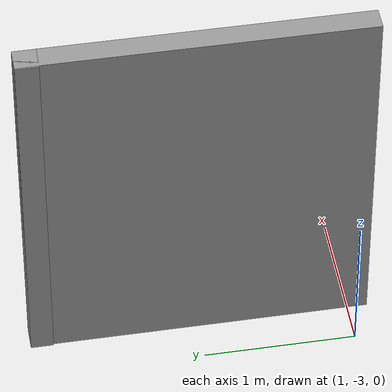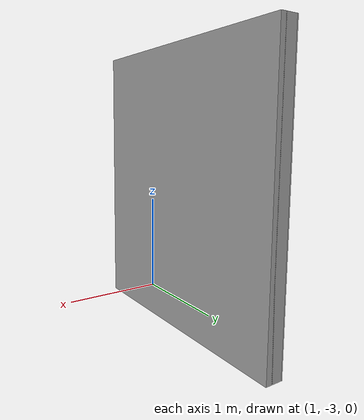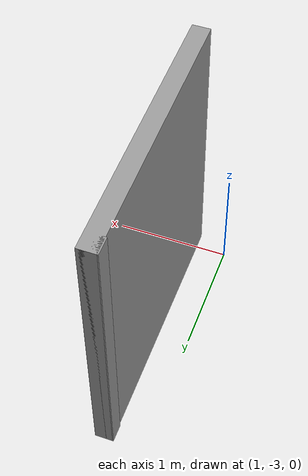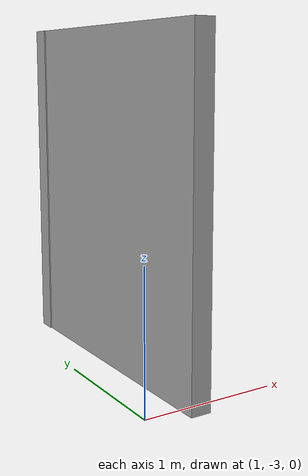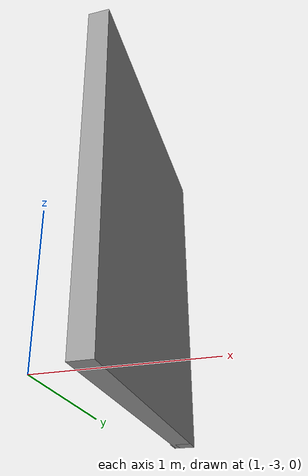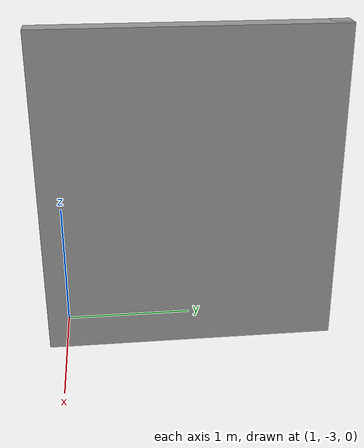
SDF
<?xml version='1.0'?>
<sdf version='1.6'>
  <model name='test'>
    <pose frame=''>1.335 -2.01 0 0 -0 0</pose>
    <link name='Wall_0'>
      <collision name='Wall_0_Collision'>
        <geometry>
          <box>
            <size>0.16 0.15 2.5</size>
          </box>
        </geometry>
        <pose frame=''>0 0 1.25 0 -0 0</pose>
      </collision>
      <visual name='Wall_0_Visual'>
        <pose frame=''>0 0 1.25 0 -0 0</pose>
        <geometry>
          <box>
            <size>0.16 0.15 2.5</size>
          </box>
        </geometry>
        <material>
          <script>
            <uri>file://media/materials/scripts/gazebo.material</uri>
            <name>Gazebo/Grey</name>
          </script>
          <ambient>1 1 1 1</ambient>
        </material>
        <meta>
          <layer>0</layer>
        </meta>
      </visual>
      <pose frame=''>0 1.05 0 0 -0 0</pose>
    </link>
    <link name='Wall_1'>
      <collision name='Wall_1_Collision'>
        <geometry>
          <box>
            <size>2.25 0.15 2.5</size>
          </box>
        </geometry>
        <pose frame=''>0 0 1.25 0 -0 0</pose>
      </collision>
      <visual name='Wall_1_Visual'>
        <pose frame=''>0 0 1.25 0 -0 0</pose>
        <geometry>
          <box>
            <size>2.25 0.15 2.5</size>
          </box>
        </geometry>
        <material>
          <script>
            <uri>file://media/materials/scripts/gazebo.material</uri>
            <name>Gazebo/Grey</name>
          </script>
          <ambient>1 1 1 1</ambient>
        </material>
        <meta>
          <layer>0</layer>
        </meta>
      </visual>
      <pose frame=''>0.005 0 0 0 0 -1.5708</pose>
    </link>
    <static>1</static>
  </model>
</sdf>
